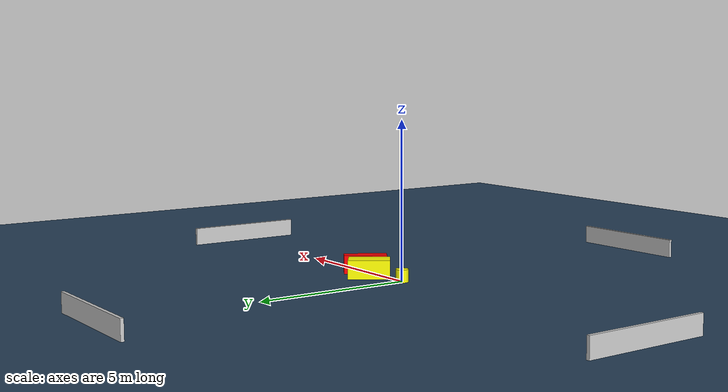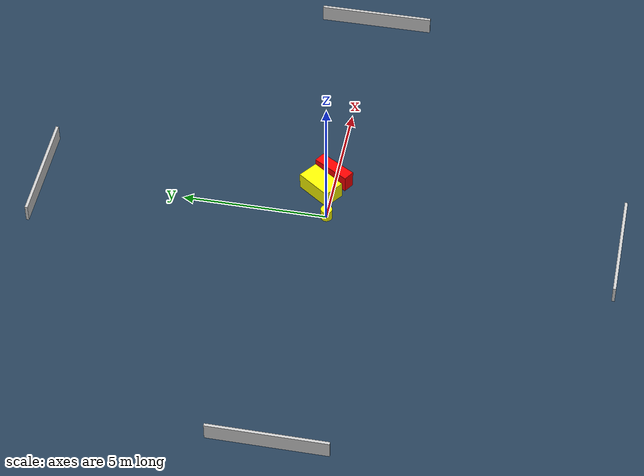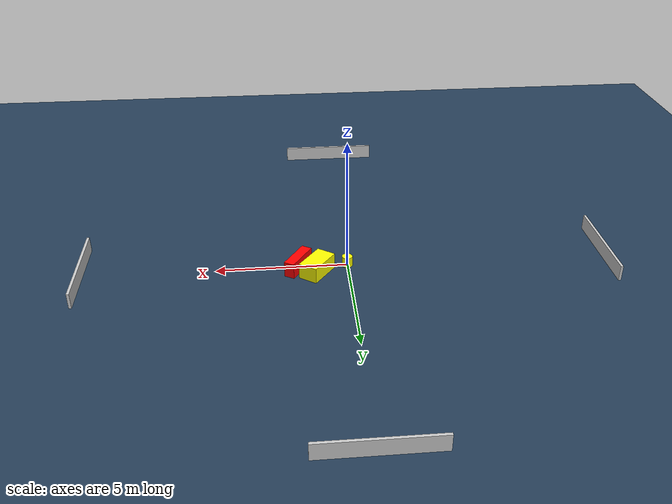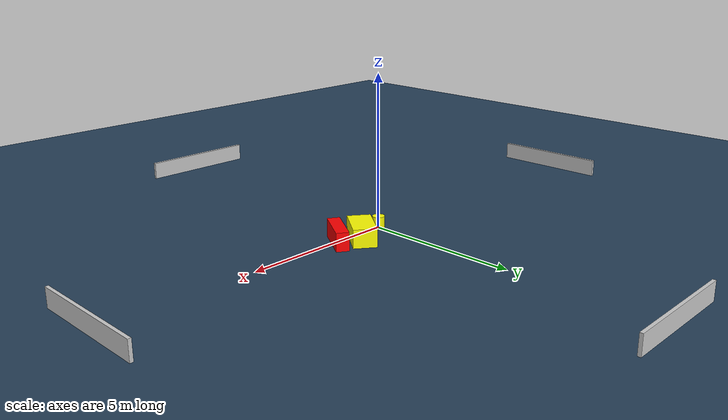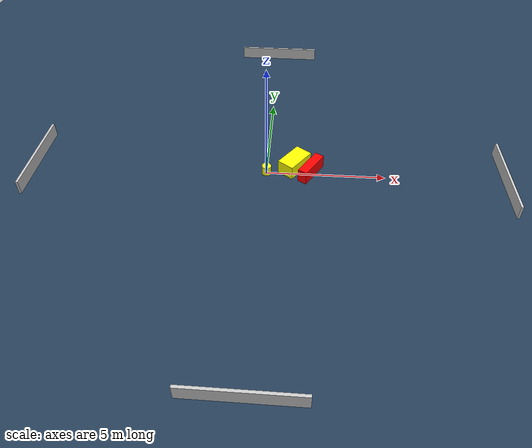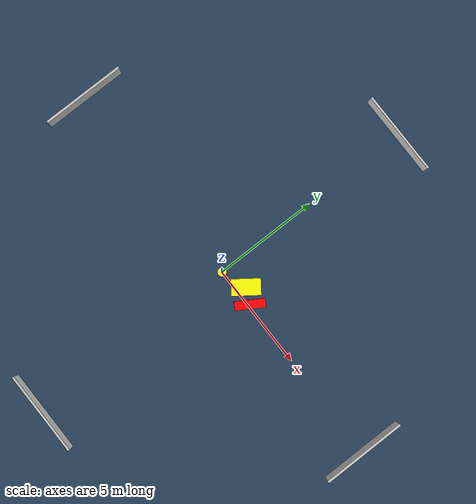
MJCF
<?xml version="1.0" ?>
<mujoco model="generated_environment">
  <option timestep="0.01" integrator="RK4" cone="elliptic"/>
  <default>
    <geom density="1"/>
  </default>
  <asset>
    <texture builtin="gradient" height="3072" name="skybox" rgb1="0.3 0.5 0.7" rgb2="0 0 0" type="skybox" width="512"/>
    <texture builtin="checker" height="300" name="groundplane" rgb1="0.2 0.3 0.4" rgb2="0.1 0.2 0.3" type="2d" width="300"/>
    <material name="groundplane" reflectance="0.2" texrepeat="5 5" texture="groundplane"/>
  </asset>
  <worldbody>
    <light dir="0 0 -1" directional="true" pos="0 0 1.5"/>
    <geom condim="3" friction="0.5 0.005 0.001" material="groundplane" name="floor" pos="0 0 0" size="0 0 0.05" type="plane"/>
    <body name="walls">
      <geom name="wall_1" condim="4" pos="-10.0 0.0 0.3" rgba="0.800000011920929 0.800000011920929 0.800000011920929 1.0" size="0.05 2.0 0.3" type="box"/>
      <geom name="wall_2" condim="4" pos="10.0 0.0 0.3" rgba="0.800000011920929 0.800000011920929 0.800000011920929 1.0" size="0.05 2.0 0.3" type="box"/>
      <geom name="wall_3" condim="4" pos="0.0 -10.0 0.3" rgba="0.800000011920929 0.800000011920929 0.800000011920929 1.0" size="2.0 0.05 0.3" type="box"/>
      <geom name="wall_4" condim="4" pos="0.0 10.0 0.3" rgba="0.800000011920929 0.800000011920929 0.800000011920929 1.0" size="2.0 0.05 0.3" type="box"/>
    </body>
    <body name="robot">
      <joint name="joint_x" type="slide" pos="0 0 0" axis="1 0 0"/>
      <joint name="joint_y" type="slide" pos="0 0 0" axis="0 1 0"/>
      <geom name="robot" type="cylinder" pos="0.0 0.0 0.2" size="0.2 0.2 0.0" mass="5.0" friction="1.0 0.005 0.0001" condim="4" rgba="1.0 1.0 0.0 1.0"/>
    </body>
    <body name="obstacle_1_movable">
      <geom name="obstacle_1_movable" condim="4" pos="1.1748892426757456 0.418057692529897 0.3" euler="0 0 53.99091519691164" friction="0.0 0.005 0.001" rgba="1.0 1.0 0.0 1.0" size="0.6595956599973865 0.3752065763106994 0.3" type="box" mass="0.1"/>
      <joint type="free"/>
    </body>
    <body name="obstacle_2_static">
      <geom name="obstacle_2_static" condim="4" pos="1.8753288815876887 0.08378760004570056 0.3" euler="0 0 238.2676843281555" friction="0.0 0.005 0.001" rgba="1.0 0.0 0.0 1.0" size="0.6877837653132075 0.2027077881409668 0.3" type="box"/>
    </body>
  </worldbody>
  <actuator>
    <motor name="actuator_x" joint="joint_x" gear="1" ctrlrange="-1 1"/>
    <motor name="actuator_y" joint="joint_y" gear="1" ctrlrange="-1 1"/>
  </actuator>
</mujoco>
